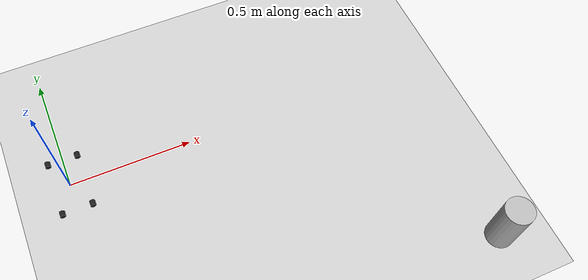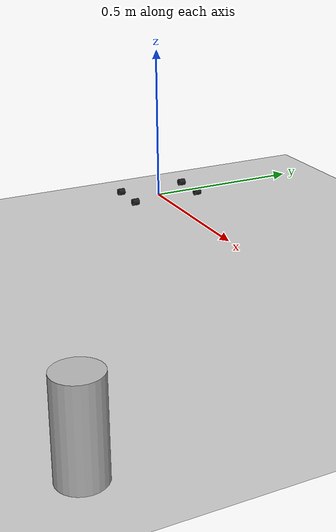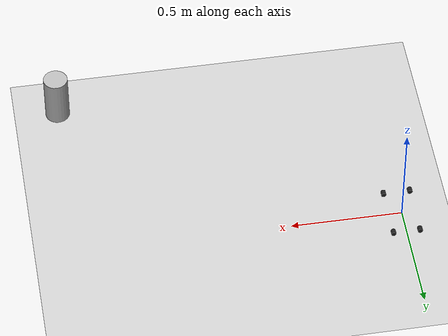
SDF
<sdf version="1.6">
 <world name="default">
  <light name="sun" type="directional">
   <pose>0 0 10 0 -0 0</pose>
   <diffuse>0.8 0.8 0.8 1</diffuse>
   <specular>0.2 0.2 0.2 1</specular>
   <attenuation>
    <range>1000</range>
    <constant>0.9</constant>
    <linear>0.01</linear>
    <quadratic>0.001</quadratic>
   </attenuation>
   <direction>-0.5 0.1 -0.9</direction>
  </light>
  <model name="ground_plane">
   <static>1</static>
   <link name="link">
    <collision name="collision">
     <geometry><plane><normal>0 0 1</normal><size>100 100</size></plane></geometry>
     <surface>
      <contact><collide_bitmask>65535</collide_bitmask></contact>
      <friction><ode><mu>100</mu><mu2>50</mu2></ode></friction>
     </surface>
    </collision>
    <visual name="visual">
     <cast_shadows>0</cast_shadows>
     <geometry><plane><normal>0 0 1</normal><size>100 100</size></plane></geometry>
     <material>
      <script><uri>file://media/materials/scripts/gazebo.material</uri><name>Gazebo/Grey</name></script>
     </material>
    </visual>
   </link>
  </model>
  <gravity>0 0 -9.8</gravity>
  <magnetic_field>6e-06 2.3e-05 -4.2e-05</magnetic_field>
  <atmosphere type="adiabatic"/>
  <physics name="default_physics" default="0" type="ode">
   <max_step_size>0.001</max_step_size>
   <real_time_factor>1</real_time_factor>
   <real_time_update_rate>1000</real_time_update_rate>
  </physics>
  <scene><ambient>0.4 0.4 0.4 1</ambient><background>0.7 0.7 0.7 1</background><shadows>1</shadows></scene>
  <audio><device>default</device></audio>
  <spherical_coordinates>
   <surface_model>EARTH_WGS84</surface_model>
   <latitude_deg>0</latitude_deg>
   <longitude_deg>0</longitude_deg>
   <elevation>0</elevation>
   <heading_deg>0</heading_deg>
  </spherical_coordinates>
  <model name="Diff_Drive">
   <link name="base_link">
    <inertial>
     <mass>5.00001</mass>
     <inertia><ixx>1</ixx><ixy>0</ixy><ixz>-2.59999e-08</ixz><iyy>1</iyy><iyz>0</iyz><izz>1</izz></inertia>
    </inertial>
    <sensor name="camera" type="depth">
     <always_on>1</always_on>
     <visualize>1</visualize>
     <update_rate>20</update_rate>
     <camera name="__default__">
      <pose>0 0 0 -1.57079 -1.57079 3.14159</pose>
      <horizontal_fov>1.0472</horizontal_fov>
      <image><format>B8G8R8</format><width>640</width><height>480</height></image>
      <clip><near>0.05</near><far>8</far></clip>
     </camera>
     <plugin name="kinect_camera_controller" filename="libgazebo_ros_openni_kinect.so">
      <cameraName>camera</cameraName>
      <alwaysOn>1</alwaysOn>
      <updateRate>10</updateRate>
      <imageTopicName>rgb/image_raw</imageTopicName>
      <depthImageTopicName>depth/image_raw</depthImageTopicName>
      <pointCloudTopicName>depth/points</pointCloudTopicName>
      <cameraInfoTopicName>rgb/camera_info</cameraInfoTopicName>
      <depthImageCameraInfoTopicName>depth/camera_info</depthImageCameraInfoTopicName>
      <frameName>camera_link</frameName>
      <baseline>0.1</baseline>
      <distortion_k1>0.0</distortion_k1>
      <distortion_k2>0.0</distortion_k2>
      <distortion_k3>0.0</distortion_k3>
      <distortion_t1>0.0</distortion_t1>
      <distortion_t2>0.0</distortion_t2>
      <pointCloudCutoff>0.4</pointCloudCutoff>
      <robotNamespace>/</robotNamespace>
     </plugin>
     <pose>0.05 0 0.05 -1.5708 -0 -1.5708</pose>
    </sensor>
    <sensor name="base_link_hokuyo_sensor" type="gpu_ray">
     <visualize>0</visualize>
     <update_rate>40</update_rate>
     <ray>
      <scan>
       <horizontal>
        <samples>400</samples>
        <resolution>1</resolution>
        <min_angle>-2.61799</min_angle>
        <max_angle>2.61799</max_angle>
       </horizontal>
      </scan>
      <range><min>0.1</min><max>30</max><resolution>0.01</resolution></range>
      <noise><type>gaussian</type><stddev>0.01</stddev></noise>
     </ray>
     <plugin name="gazebo_ros_lidar_controller" filename="libgazebo_ros_gpu_laser.so">
      <topicName>/scan</topicName>
      <frameName>hokuyo_sensor</frameName>
      <robotNamespace>/</robotNamespace>
     </plugin>
     <pose>0.02 0 0.13 0 -0 0</pose>
    </sensor>
    <sensor name="imu_sensor" type="imu">
     <always_on>1</always_on>
     <update_rate>100</update_rate>
     <visualize>1</visualize>
     <topic>data</topic>
     <plugin name="imu_plugin" filename="libgazebo_ros_imu_sensor.so">
      <topicName>imu/data</topicName>
      <bodyName>imu_link</bodyName>
      <updateRateHZ>10.0</updateRateHZ>
      <gaussianNoise>0.0</gaussianNoise>
      <xyzOffset>0 0 0</xyzOffset>
      <rpyOffset>0 0 0</rpyOffset>
      <frameName>imu_link</frameName>
      <robotNamespace>/</robotNamespace>
     </plugin>
    </sensor>
   </link>
   <link name="left_back_wheel">
    <pose>-0.058 0.115 0.015 0 -0 0</pose>
    <inertial>
     <mass>0.4</mass>
     <inertia>
      <ixx>0.000184189</ixx>
      <ixy>0</ixy>
      <ixz>0</ixz>
      <iyy>0.000184189</iyy>
      <iyz>0</iyz>
      <izz>0.000336111</izz>
     </inertia>
    </inertial>
    <collision name="left_back_wheel_collision">
     <pose>0 0 0 1.57 -0 0</pose>
     <geometry><cylinder><length>0.022</length><radius>0.011</radius></cylinder></geometry>
     <surface>
      <contact><ode><kp>1e+07</kp><kd>1</kd></ode></contact>
      <friction><ode><mu>200</mu><mu2>100</mu2></ode></friction>
     </surface>
    </collision>
    <visual name="left_back_wheel_visual">
     <pose>0 0 0 1.57 -0 0</pose>
     <geometry><cylinder><length>0.022</length><radius>0.011</radius></cylinder></geometry>
     <material>
      <script><name>Gazebo/Black</name><uri>file://media/materials/scripts/gazebo.material</uri></script>
     </material>
    </visual>
   </link>
   <joint name="left_back_wheel_joint" type="revolute">
    <child>left_back_wheel</child>
    <parent>base_link</parent>
    <axis>
     <xyz>0 1 0</xyz>
     <limit><lower>-1e+16</lower><upper>1e+16</upper></limit>
     <dynamics>
      <damping>0</damping>
      <friction>0</friction>
      <spring_reference>0</spring_reference>
      <spring_stiffness>0</spring_stiffness>
     </dynamics>
     <use_parent_model_frame>1</use_parent_model_frame>
    </axis>
   </joint>
   <link name="left_front_wheel">
    <pose>0.062 0.115 0.015 0 -0 0</pose>
    <inertial>
     <mass>0.4</mass>
     <inertia>
      <ixx>0.000184189</ixx>
      <ixy>0</ixy>
      <ixz>0</ixz>
      <iyy>0.000184189</iyy>
      <iyz>0</iyz>
      <izz>0.000336111</izz>
     </inertia>
    </inertial>
    <collision name="left_front_wheel_collision">
     <pose>0 0 0 1.57 -0 0</pose>
     <geometry><cylinder><length>0.022</length><radius>0.011</radius></cylinder></geometry>
     <surface>
      <contact><ode><kp>1e+07</kp><kd>1</kd></ode></contact>
      <friction><ode><mu>200</mu><mu2>100</mu2></ode></friction>
     </surface>
    </collision>
    <visual name="left_front_wheel_visual">
     <pose>0 0 0 1.57 -0 0</pose>
     <geometry><cylinder><length>0.022</length><radius>0.011</radius></cylinder></geometry>
     <material>
      <script><name>Gazebo/Black</name><uri>file://media/materials/scripts/gazebo.material</uri></script>
     </material>
    </visual>
   </link>
   <joint name="left_front_wheel_joint" type="revolute">
    <child>left_front_wheel</child>
    <parent>base_link</parent>
    <axis>
     <xyz>0 1 0</xyz>
     <limit><lower>-1e+16</lower><upper>1e+16</upper></limit>
     <dynamics>
      <damping>0</damping>
      <friction>0</friction>
      <spring_reference>0</spring_reference>
      <spring_stiffness>0</spring_stiffness>
     </dynamics>
     <use_parent_model_frame>1</use_parent_model_frame>
    </axis>
   </joint>
   <link name="right_back_wheel">
    <pose>-0.058 -0.115 0.015 0 -0 0</pose>
    <inertial>
     <mass>0.4</mass>
     <inertia>
      <ixx>0.000184189</ixx>
      <ixy>0</ixy>
      <ixz>0</ixz>
      <iyy>0.000184189</iyy>
      <iyz>0</iyz>
      <izz>0.000336111</izz>
     </inertia>
    </inertial>
    <collision name="right_back_wheel_collision">
     <pose>0 0 0 1.57 -0 0</pose>
     <geometry><cylinder><length>0.022</length><radius>0.011</radius></cylinder></geometry>
     <surface>
      <contact><ode><kp>1e+07</kp><kd>1</kd></ode></contact>
      <friction><ode><mu>200</mu><mu2>100</mu2></ode></friction>
     </surface>
    </collision>
    <visual name="right_back_wheel_visual">
     <pose>0 0 0 1.57 -0 0</pose>
     <geometry><cylinder><length>0.022</length><radius>0.011</radius></cylinder></geometry>
     <material>
      <script><name>Gazebo/Black</name><uri>file://media/materials/scripts/gazebo.material</uri></script>
     </material>
    </visual>
   </link>
   <joint name="right_back_wheel_joint" type="revolute">
    <child>right_back_wheel</child>
    <parent>base_link</parent>
    <axis>
     <xyz>0 1 0</xyz>
     <limit><lower>-1e+16</lower><upper>1e+16</upper></limit>
     <dynamics>
      <damping>0</damping>
      <friction>0</friction>
      <spring_reference>0</spring_reference>
      <spring_stiffness>0</spring_stiffness>
     </dynamics>
     <use_parent_model_frame>1</use_parent_model_frame>
    </axis>
   </joint>
   <link name="right_front_wheel">
    <pose>0.062 -0.115 0.015 0 -0 0</pose>
    <inertial>
     <mass>0.4</mass>
     <inertia>
      <ixx>0.000184189</ixx>
      <ixy>0</ixy>
      <ixz>0</ixz>
      <iyy>0.000184189</iyy>
      <iyz>0</iyz>
      <izz>0.000336111</izz>
     </inertia>
    </inertial>
    <collision name="right_front_wheel_collision">
     <pose>0 0 0 1.57 -0 0</pose>
     <geometry><cylinder><length>0.022</length><radius>0.011</radius></cylinder></geometry>
     <surface>
      <contact><ode><kp>1e+07</kp><kd>1</kd></ode></contact>
      <friction><ode><mu>200</mu><mu2>100</mu2></ode></friction>
     </surface>
    </collision>
    <visual name="right_front_wheel_visual">
     <pose>0 0 0 1.57 -0 0</pose>
     <geometry><cylinder><length>0.022</length><radius>0.011</radius></cylinder></geometry>
     <material>
      <script><name>Gazebo/Black</name><uri>file://media/materials/scripts/gazebo.material</uri></script>
     </material>
    </visual>
   </link>
   <joint name="right_front_wheel_joint" type="revolute">
    <child>right_front_wheel</child>
    <parent>base_link</parent>
    <axis>
     <xyz>0 1 0</xyz>
     <limit><lower>-1e+16</lower><upper>1e+16</upper></limit>
     <dynamics>
      <damping>0</damping>
      <friction>0</friction>
      <spring_reference>0</spring_reference>
      <spring_stiffness>0</spring_stiffness>
     </dynamics>
     <use_parent_model_frame>1</use_parent_model_frame>
    </axis>
   </joint>
   <static>0</static>
   <plugin name="gazebo_ros_control" filename="libgazebo_ros_control.so">
    <robotNamespace>/</robotNamespace>
   </plugin>
   <pose>0 -1.9e-05 -0.003993 1e-06 -1e-06 2.4e-05</pose>
  </model>
  <model name="beer">
   <link name="link">
    <pose>0 0 0.115 0 -0 0</pose>
    <inertial>
     <mass>0.39</mass>
     <inertia><ixx>0.00058</ixx><ixy>0</ixy><ixz>0</ixz><iyy>0.00058</iyy><iyz>0</iyz><izz>0.00019</izz></inertia>
    </inertial>
    <collision name="collision">
     <geometry><cylinder><radius>0.055</radius><length>0.23</length></cylinder></geometry>
    </collision>
    <visual name="visual">
     <geometry><cylinder><radius>0.055</radius><length>0.23</length></cylinder></geometry>
     <material>
      <script>
       <uri>model://beer/materials/scripts</uri>
       <uri>model://beer/materials/textures</uri>
       <name>Beer/Diffuse</name>
      </script>
     </material>
    </visual>
   </link>
   <pose>1.44736 -0.835589 -2e-06 1e-06 -0 -1e-06</pose>
  </model>
 </world>
</sdf>
